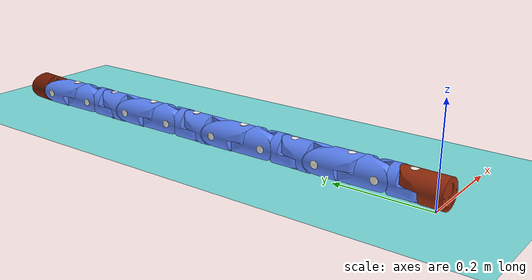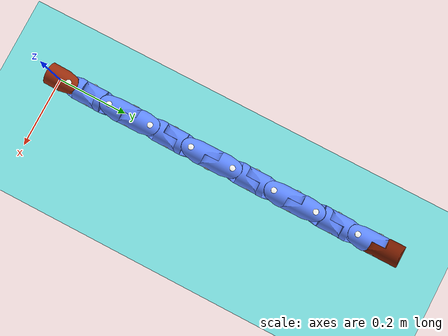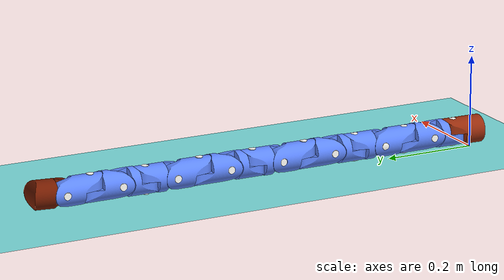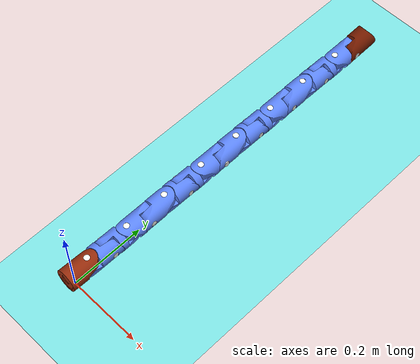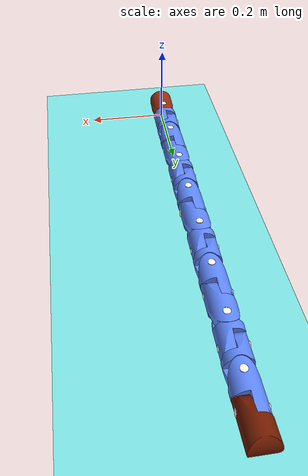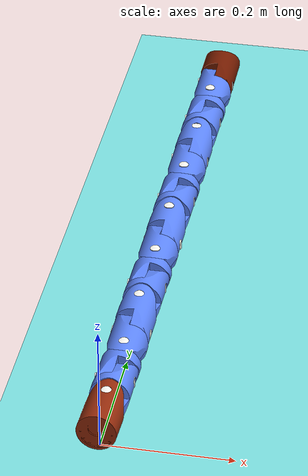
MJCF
<mujoco model="onshape">
	<compiler angle="radian" meshdir="../meshes/" />
	<size njmax="500" nconmax="100"  nuser_actuator='1' />
	<option gravity="0 0 -9.806" timestep="0.001" iterations="50" tolerance="1e-10" solver="Newton" jacobian="dense" cone="elliptic" impratio="100" />
	<default>
		<geom contype="1" conaffinity="1" friction="0.6 0.3 0.3" rgba="0.5 0.6 0.7 1" margin="0.001" group="0" />
		<light castshadow="false" diffuse="1 1 1" />
		<motor ctrlrange="-7 7" ctrllimited="true" />
		<camera fovy="60" />
		<joint damping="0.01" armature="0.01" />
	</default>
	<asset>
		<mesh name="finalhead" file="finalhead.stl" />
		<mesh name="finalrod" file="finalrod.stl" />
		<mesh name="finalcoupling" file="finalcoupling.stl" />
		<mesh name="finalend" file="finalend.stl" />
	</asset>
	<asset>
		<texture type="skybox" builtin="gradient" rgb1="1.0 1.0 1.0" rgb2="1.0 1.0 1.0" width="512" height="512" />
		<texture name="plane" type="2d" builtin="flat" rgb1="1 1 1" rgb2="1 1 1" width="512" height="512" mark="cross" markrgb="0 0 0" />
		<material name="plane" reflectance="0.0" texture="plane" texrepeat="3 3" texuniform="true" />
	</asset>
	<worldbody>
		<light directional="true" diffuse=".8 .8 .8" pos="0 0 10" dir="0 0 -10" />
		<camera name="track" mode="trackcom" pos="0 -1.3 1.6" xyaxes="1 0 0 0 0.707 0.707" />
		<geom name="floor" type="plane" conaffinity="1" condim="3" contype="1" rgba="0.5 0.9 0.9 0.1" material="plane" pos="0 0 0" size="0 0 1" />
		<body name="finalhead" pos="0 0 0">
			<inertial pos="0.000501801 0.0148621 0.0426872" quat="0.43159 0.556763 -0.57214 0.420001" mass="0.246213" diaginertia="0.000196123 0.000190987 9.74484e-05" />
			<joint name="floating_base" type="free" />
			<geom pos="0.000743331 0.0237264 0.0388336" quat="0.999907 0 0 -0.0136159" type="mesh" contype="0" conaffinity="0" group="1" rgba="0.596078 0.176471 0.0509804 1" mesh="finalhead" />
			<geom pos="0.000743331 0.0237264 0.0388336" quat="0.999907 0 0 -0.0136159" type="mesh" rgba="0.596078 0.176471 0.0509804 1" mesh="finalhead" />
			<geom pos="0.00128792 0.043719 0.0086617" quat="0.999907 0 0 -0.0136159" type="mesh" contype="0" conaffinity="0" group="1" rgba="1 0.996078 0.968627 1" mesh="finalrod" />
			<geom pos="0.00128792 0.043719 0.0086617" quat="0.999907 0 0 -0.0136159" type="mesh" rgba="1 0.996078 0.968627 1" mesh="finalrod" />
			<body name="finalcoupling" pos="0.00128792 0.043719 0.0393336" quat="0.708112 0 0 0.7061">
				<inertial pos="0.0321744 -0.00447826 -0.00399057" quat="-0.0371197 0.601631 -0.15798 0.782116" mass="0.211217" diaginertia="0.000206229 0.000199224 7.11662e-05" />
				<joint name="joint1" pos="0 0 0" axis="0 0 1" />
				<geom pos="0.02 0 0.0005" quat="0.499998 0.5 0.5 -0.500002" type="mesh" contype="0" conaffinity="0" group="1" rgba="0.372549 0.533333 1 1" mesh="finalcoupling" />
				<geom pos="0.02 0 0.0005" quat="0.499998 0.5 0.5 -0.500002" type="mesh" rgba="0.372549 0.533333 1 1" mesh="finalcoupling" />
				<geom pos="0.06 0.0301709 0.0005" quat="0.707105 0.707108 0 0" type="mesh" contype="0" conaffinity="0" group="1" rgba="1 0.996078 0.968627 1" mesh="finalrod" />
				<geom pos="0.06 0.0301709 0.0005" quat="0.707105 0.707108 0 0" type="mesh" rgba="1 0.996078 0.968627 1" mesh="finalrod" />
				<body name="finalcoupling_2" pos="0.06 -0.0005 0.0005" quat="0.499998 0.5 0.5 -0.500002">
					<inertial pos="0.00484149 0.03 -0.00434156" quat="0.599413 0.68929 -0.374902 0.158217" mass="0.195908" diaginertia="0.00018962 0.000185433 6.4679e-05" />
					<joint name="joint2" pos="0 0 0" axis="0 0 1" />
					<geom pos="0 0.04 0.0005" quat="1.32679e-06 -1 0 0" type="mesh" contype="0" conaffinity="0" group="1" rgba="0.372549 0.533333 1 1" mesh="finalcoupling" />
					<geom pos="0 0.04 0.0005" quat="1.32679e-06 -1 0 0" type="mesh" rgba="0.372549 0.533333 1 1" mesh="finalcoupling" />
					<body name="finalcoupling_3" pos="0.0005 0.06 0.0005" quat="0.707105 0 0.707108 0">
						<inertial pos="0.00449058 0.0278256 -0.00397826" quat="0.631445 0.752315 -0.18774 0.00727006" mass="0.211217" diaginertia="0.000206231 0.000199225 7.11641e-05" />
						<joint name="joint3" pos="0 0 0" axis="0 0 1" />
						<geom pos="0 0 0.0306709" quat="1.76038e-12 1.32679e-06 -1 -1.32679e-06" type="mesh" contype="0" conaffinity="0" group="1" rgba="1 0.996078 0.968627 1" mesh="finalrod" />
						<geom pos="0 0 0.0306709" quat="1.76038e-12 1.32679e-06 -1 -1.32679e-06" type="mesh" rgba="1 0.996078 0.968627 1" mesh="finalrod" />
						<geom pos="0 0.04 0.0005" quat="1.32679e-06 1 0 0" type="mesh" contype="0" conaffinity="0" group="1" rgba="0.372549 0.533333 1 1" mesh="finalcoupling" />
						<geom pos="0 0.04 0.0005" quat="1.32679e-06 1 0 0" type="mesh" rgba="0.372549 0.533333 1 1" mesh="finalcoupling" />
						<body name="finalcoupling_4" pos="0.0005 0.06 0.0005" quat="0.499998 0.5 0.500002 0.5">
							<inertial pos="0.03 -0.00417561 -0.00367555" quat="0.738899 0.305687 0.554955 0.229364" mass="0.226526" diaginertia="0.000221478 0.000218195 7.76443e-05" />
							<joint name="joint4" pos="0 0 0" axis="0 0 1" />
							<geom pos="0.02 0 0.0005" quat="0.499998 0.5 0.5 -0.500002" type="mesh" contype="0" conaffinity="0" group="1" rgba="0.372549 0.533333 1 1" mesh="finalcoupling" />
							<geom pos="0.02 0 0.0005" quat="0.499998 0.5 0.5 -0.500002" type="mesh" rgba="0.372549 0.533333 1 1" mesh="finalcoupling" />
							<geom pos="0 0 0.0306709" quat="9.38184e-07 -0.707105 -0.707108 9.38187e-07" type="mesh" contype="0" conaffinity="0" group="1" rgba="1 0.996078 0.968627 1" mesh="finalrod" />
							<geom pos="0 0 0.0306709" quat="9.38184e-07 -0.707105 -0.707108 9.38187e-07" type="mesh" rgba="1 0.996078 0.968627 1" mesh="finalrod" />
							<geom pos="0.06 0.0301709 0.0005" quat="0.499998 0.5 0.5 -0.500002" type="mesh" contype="0" conaffinity="0" group="1" rgba="1 0.996078 0.968627 1" mesh="finalrod" />
							<geom pos="0.06 0.0301709 0.0005" quat="0.499998 0.5 0.5 -0.500002" type="mesh" rgba="1 0.996078 0.968627 1" mesh="finalrod" />
							<body name="finalcoupling_5" pos="0.06 -0.0005 0.0005" quat="0.707105 0.707108 0 0">
								<inertial pos="0.0321744 -0.00447826 -0.00399057" quat="-0.0371197 0.601631 -0.15798 0.782116" mass="0.211217" diaginertia="0.000206229 0.000199224 7.11662e-05" />
								<joint name="joint5" pos="0 0 0" axis="0 0 1" />
								<geom pos="0.02 0 0.0005" quat="0.499998 0.5 0.5 -0.500002" type="mesh" contype="0" conaffinity="0" group="1" rgba="0.372549 0.533333 1 1" mesh="finalcoupling" />
								<geom pos="0.02 0 0.0005" quat="0.499998 0.5 0.5 -0.500002" type="mesh" rgba="0.372549 0.533333 1 1" mesh="finalcoupling" />
								<geom pos="0.06 0.0301709 0.0005" quat="0.707105 0.707108 0 0" type="mesh" contype="0" conaffinity="0" group="1" rgba="1 0.996078 0.968627 1" mesh="finalrod" />
								<geom pos="0.06 0.0301709 0.0005" quat="0.707105 0.707108 0 0" type="mesh" rgba="1 0.996078 0.968627 1" mesh="finalrod" />
								<body name="finalcoupling_6" pos="0.06 -0.0005 0.0005" quat="0.499998 0.5 0.5 -0.500002">
									<inertial pos="0.00447731 0.0321744 -0.00399064" quat="0.537149 0.579359 -0.526716 0.313663" mass="0.211217" diaginertia="0.000206226 0.000199229 7.11677e-05" />
									<joint name="joint6" pos="0 0 0" axis="0 0 1" />
									<geom pos="0.029817 0.06 0.0005" quat="0.707105 0 -0.707108 0" type="mesh" contype="0" conaffinity="0" group="1" rgba="1 0.996078 0.968627 1" mesh="finalrod" />
									<geom pos="0.029817 0.06 0.0005" quat="0.707105 0 -0.707108 0" type="mesh" rgba="1 0.996078 0.968627 1" mesh="finalrod" />
									<geom pos="0 0.04 0.0005" quat="1.32679e-06 -1 0 0" type="mesh" contype="0" conaffinity="0" group="1" rgba="0.372549 0.533333 1 1" mesh="finalcoupling" />
									<geom pos="0 0.04 0.0005" quat="1.32679e-06 -1 0 0" type="mesh" rgba="0.372549 0.533333 1 1" mesh="finalcoupling" />
									<body name="finalcoupling_7" pos="0.0005 0.06 0.0005" quat="0.499998 0.5 0.500002 0.5">
										<inertial pos="0.0321744 -0.00447737 -0.00399057" quat="-0.0370576 0.601648 -0.15791 0.782119" mass="0.211217" diaginertia="0.00020623 0.000199223 7.11701e-05" />
										<joint name="joint7" pos="0 0 0" axis="0 0 1" />
										<geom pos="0.02 0 0.0005" quat="0.499998 0.5 0.5 -0.500002" type="mesh" contype="0" conaffinity="0" group="1" rgba="0.372549 0.533333 1 1" mesh="finalcoupling" />
										<geom pos="0.02 0 0.0005" quat="0.499998 0.5 0.5 -0.500002" type="mesh" rgba="0.372549 0.533333 1 1" mesh="finalcoupling" />
										<geom pos="0.06 -0.029817 0.0005" quat="9.38184e-07 9.38187e-07 0.707108 0.707105" type="mesh" contype="0" conaffinity="0" group="1" rgba="1 0.996078 0.968627 1" mesh="finalrod" />
										<geom pos="0.06 -0.029817 0.0005" quat="9.38184e-07 9.38187e-07 0.707108 0.707105" type="mesh" rgba="1 0.996078 0.968627 1" mesh="finalrod" />
										<body name="finalcoupling_8" pos="0.06 -0.0005 0.0005" quat="0.499998 0.5 0.5 -0.500002">
											<inertial pos="0.00484149 0.03 -0.00434156" quat="0.599413 0.68929 -0.374902 0.158217" mass="0.195908" diaginertia="0.00018962 0.000185433 6.4679e-05" />
											<joint name="joint8" pos="0 0 0" axis="0 0 1" />
											<geom pos="0 0.04 0.0005" quat="1.32679e-06 1 0 0" type="mesh" contype="0" conaffinity="0" group="1" rgba="0.372549 0.533333 1 1" mesh="finalcoupling" />
											<geom pos="0 0.04 0.0005" quat="1.32679e-06 1 0 0" type="mesh" rgba="0.372549 0.533333 1 1" mesh="finalcoupling" />
											<body name="finalcoupling_9" pos="0.0005 0.06 0.0005" quat="0.707105 0 0.707108 0">
												<inertial pos="0.00417472 0.03 -0.00367478" quat="0.608797 0.685139 -0.359385 0.175478" mass="0.226526" diaginertia="0.000221475 0.000218193 7.7654e-05" />
												<joint name="joint9" pos="0 0 0" axis="0 0 1" />
												<geom pos="0.029817 0.06 0.0005" quat="0.499998 0.5 -0.500002 -0.5" type="mesh" contype="0" conaffinity="0" group="1" rgba="1 0.996078 0.968627 1" mesh="finalrod" />
												<geom pos="0.029817 0.06 0.0005" quat="0.499998 0.5 -0.500002 -0.5" type="mesh" rgba="1 0.996078 0.968627 1" mesh="finalrod" />
												<geom pos="0 0.04 0.0005" quat="1.32679e-06 1 0 0" type="mesh" contype="0" conaffinity="0" group="1" rgba="0.372549 0.533333 1 1" mesh="finalcoupling" />
												<geom pos="0 0.04 0.0005" quat="1.32679e-06 1 0 0" type="mesh" rgba="0.372549 0.533333 1 1" mesh="finalcoupling" />
												<geom pos="0 0 -0.029317" type="mesh" contype="0" conaffinity="0" group="1" rgba="1 0.996078 0.968627 1" mesh="finalrod" />
												<geom pos="0 0 -0.029317" type="mesh" rgba="1 0.996078 0.968627 1" mesh="finalrod" />
												<body name="finalcoupling_10" pos="0.0005 0.06 0.0005" quat="0.499998 0.5 0.500002 0.5">
													<inertial pos="0.0321744 -0.00447737 -0.00399058" quat="-0.0370073 0.601663 -0.15787 0.782119" mass="0.211217" diaginertia="0.000206233 0.000199223 7.11679e-05" />
													<joint name="joint10" pos="0 0 0" axis="0 0 1" />
													<geom pos="0.06 -0.029817 0.0005" quat="0.499998 -0.5 -0.5 -0.500002" type="mesh" contype="0" conaffinity="0" group="1" rgba="1 0.996078 0.968627 1" mesh="finalrod" />
													<geom pos="0.06 -0.029817 0.0005" quat="0.499998 -0.5 -0.5 -0.500002" type="mesh" rgba="1 0.996078 0.968627 1" mesh="finalrod" />
													<geom pos="0.02 0 0.0005" quat="0.499998 0.5 0.5 -0.500002" type="mesh" contype="0" conaffinity="0" group="1" rgba="0.372549 0.533333 1 1" mesh="finalcoupling" />
													<geom pos="0.02 0 0.0005" quat="0.499998 0.5 0.5 -0.500002" type="mesh" rgba="0.372549 0.533333 1 1" mesh="finalcoupling" />
													<body name="finalcoupling_11" pos="0.06 -0.0005 0.0005" quat="0.499998 0.5 0.5 -0.500002">
														<inertial pos="0.00484149 0.03 -0.00434156" quat="0.599413 0.68929 -0.374902 0.158217" mass="0.195908" diaginertia="0.00018962 0.000185433 6.4679e-05" />
														<joint name="joint11" pos="0 0 0" axis="0 0 1" />
														<geom pos="0 0.04 0.0005" quat="1.32679e-06 -1 0 0" type="mesh" contype="0" conaffinity="0" group="1" rgba="0.372549 0.533333 1 1" mesh="finalcoupling" />
														<geom pos="0 0.04 0.0005" quat="1.32679e-06 -1 0 0" type="mesh" rgba="0.372549 0.533333 1 1" mesh="finalcoupling" />
														<body name="finalcoupling_12" pos="0.0005 0.06 0.0005" quat="0.707105 0 0.707108 0">
															<inertial pos="0.00417555 0.03 -0.00367478" quat="0.608818 0.685167 -0.359332 0.175405" mass="0.226526" diaginertia="0.000221476 0.000218193 7.76526e-05" />
															<joint name="joint12" pos="0 0 0" axis="0 0 1" />
															<geom pos="0 0.04 0.0005" quat="1.32679e-06 -1 0 0" type="mesh" contype="0" conaffinity="0" group="1" rgba="0.372549 0.533333 1 1" mesh="finalcoupling" />
															<geom pos="0 0.04 0.0005" quat="1.32679e-06 -1 0 0" type="mesh" rgba="0.372549 0.533333 1 1" mesh="finalcoupling" />
															<geom pos="-0.0301709 0.06 0.0005" quat="0.499998 -0.5 0.500002 -0.5" type="mesh" contype="0" conaffinity="0" group="1" rgba="1 0.996078 0.968627 1" mesh="finalrod" />
															<geom pos="-0.0301709 0.06 0.0005" quat="0.499998 -0.5 0.500002 -0.5" type="mesh" rgba="1 0.996078 0.968627 1" mesh="finalrod" />
															<geom pos="0 0 -0.029317" quat="0.707105 0 0 -0.707108" type="mesh" contype="0" conaffinity="0" group="1" rgba="1 0.996078 0.968627 1" mesh="finalrod" />
															<geom pos="0 0 -0.029317" quat="0.707105 0 0 -0.707108" type="mesh" rgba="1 0.996078 0.968627 1" mesh="finalrod" />
															<body name="finalcoupling_13" pos="0.0005 0.06 0.0005" quat="0.707105 0 0.707108 0">
																<inertial pos="0.00447731 0.0321744 -0.00399064" quat="0.537162 0.579384 -0.526692 0.313635" mass="0.211217" diaginertia="0.000206225 0.000199228 7.117e-05" />
																<joint name="joint13" pos="0 0 0" axis="0 0 1" />
																<geom pos="0.029817 0.06 0.0005" quat="0.499998 0.5 -0.500002 -0.5" type="mesh" contype="0" conaffinity="0" group="1" rgba="1 0.996078 0.968627 1" mesh="finalrod" />
																<geom pos="0.029817 0.06 0.0005" quat="0.499998 0.5 -0.500002 -0.5" type="mesh" rgba="1 0.996078 0.968627 1" mesh="finalrod" />
																<geom pos="0 0.04 0.0005" quat="1.32679e-06 -1 0 0" type="mesh" contype="0" conaffinity="0" group="1" rgba="0.372549 0.533333 1 1" mesh="finalcoupling" />
																<geom pos="0 0.04 0.0005" quat="1.32679e-06 -1 0 0" type="mesh" rgba="0.372549 0.533333 1 1" mesh="finalcoupling" />
																<body name="finalcoupling_14" pos="0.0005 0.06 0.0005" quat="0.499998 0.5 0.500002 0.5">
																	<inertial pos="0.0321744 -0.00447826 -0.00399058" quat="-0.0370699 0.601645 -0.15794 0.782115" mass="0.211217" diaginertia="0.000206231 0.000199225 7.11641e-05" />
																	<joint name="joint14" pos="0 0 0" axis="0 0 1" />
																	<geom pos="0.06 0.0301709 0.0005" quat="0.499998 0.5 -0.5 0.500002" type="mesh" contype="0" conaffinity="0" group="1" rgba="1 0.996078 0.968627 1" mesh="finalrod" />
																	<geom pos="0.06 0.0301709 0.0005" quat="0.499998 0.5 -0.5 0.500002" type="mesh" rgba="1 0.996078 0.968627 1" mesh="finalrod" />
																	<geom pos="0.02 0 0.0005" quat="0.499998 0.5 0.5 -0.500002" type="mesh" contype="0" conaffinity="0" group="1" rgba="0.372549 0.533333 1 1" mesh="finalcoupling" />
																	<geom pos="0.02 0 0.0005" quat="0.499998 0.5 0.5 -0.500002" type="mesh" rgba="0.372549 0.533333 1 1" mesh="finalcoupling" />
																	<body name="finalcoupling_15" pos="0.06 -0.0005 0.0005" quat="0.499998 0.5 0.5 -0.500002">
																		<inertial pos="0.00484149 0.03 -0.00434156" quat="0.599413 0.68929 -0.374902 0.158217" mass="0.195908" diaginertia="0.00018962 0.000185433 6.4679e-05" />
																		<joint name="joint15" pos="0 0 0" axis="0 0 1" />
																		<geom pos="0 0.04 0.0005" quat="1.32679e-06 1 0 0" type="mesh" contype="0" conaffinity="0" group="1" rgba="0.372549 0.533333 1 1" mesh="finalcoupling" />
																		<geom pos="0 0.04 0.0005" quat="1.32679e-06 1 0 0" type="mesh" rgba="0.372549 0.533333 1 1" mesh="finalcoupling" />
																		<body name="finalend" pos="0.0005 0.06 0.0005" quat="0.706893 -0.0173635 0.706894 -0.0173635">
																			<inertial pos="-1.26318e-07 0.0305856 -0.00316821" quat="0.430889 0.561312 -0.56048 0.430262" mass="0.257835" diaginertia="0.000212339 0.000210588 0.000101027" />
																			<joint name="joint16" pos="0 0 0" axis="0 0 1" />
																			<geom pos="0 0 0.0306709" quat="9.38184e-07 -0.707105 0.707108 -9.38187e-07" type="mesh" contype="0" conaffinity="0" group="1" rgba="1 0.996078 0.968627 1" mesh="finalrod" />
																			<geom pos="0 0 0.0306709" quat="9.38184e-07 -0.707105 0.707108 -9.38187e-07" type="mesh" rgba="1 0.996078 0.968627 1" mesh="finalrod" />
																			<geom pos="-1.54268e-08 0.07 0.0005" quat="1.32679e-06 1 0 0" type="mesh" contype="0" conaffinity="0" group="1" rgba="0.458824 0.105882 0 1" mesh="finalend" />
																			<geom pos="-1.54268e-08 0.07 0.0005" quat="1.32679e-06 1 0 0" type="mesh" rgba="0.458824 0.105882 0 1" mesh="finalend" />
																		</body>
																	</body>
																</body>
															</body>
														</body>
													</body>
												</body>
											</body>
										</body>
									</body>
								</body>
							</body>
						</body>
					</body>
				</body>
			</body>
		</body>
	</worldbody>
	<actuator>
		<!-- FR leg -->
		<motor name="joint1_motor" joint="joint1" user="33" />
		<motor name="joint2_motor" joint="joint2" user="33" />
		<motor name="joint3_motor" joint="joint3" user="33" />
		<motor name="joint4_motor" joint="joint4" user="33" />
		<motor name="joint5_motor" joint="joint5" user="33" />
		<motor name="joint6_motor" joint="joint6" user="33" />
		<motor name="joint7_motor" joint="joint7" user="33" />
		<motor name="joint8_motor" joint="joint8" user="33" />
		<motor name="joint9_motor" joint="joint9" user="33" />
		<motor name="joint10_motor" joint="joint10" user="33" />
		<motor name="joint11_motor" joint="joint11" user="33" />
		<motor name="joint12_motor" joint="joint12" user="33" />
		<motor name="joint13_motor" joint="joint13" user="33" />
		<motor name="joint14_motor" joint="joint14" user="33" />
		<motor name="joint15_motor" joint="joint15" user="33" />
		<motor name="joint16_motor" joint="joint16" user="33" />
	</actuator>
</mujoco>
